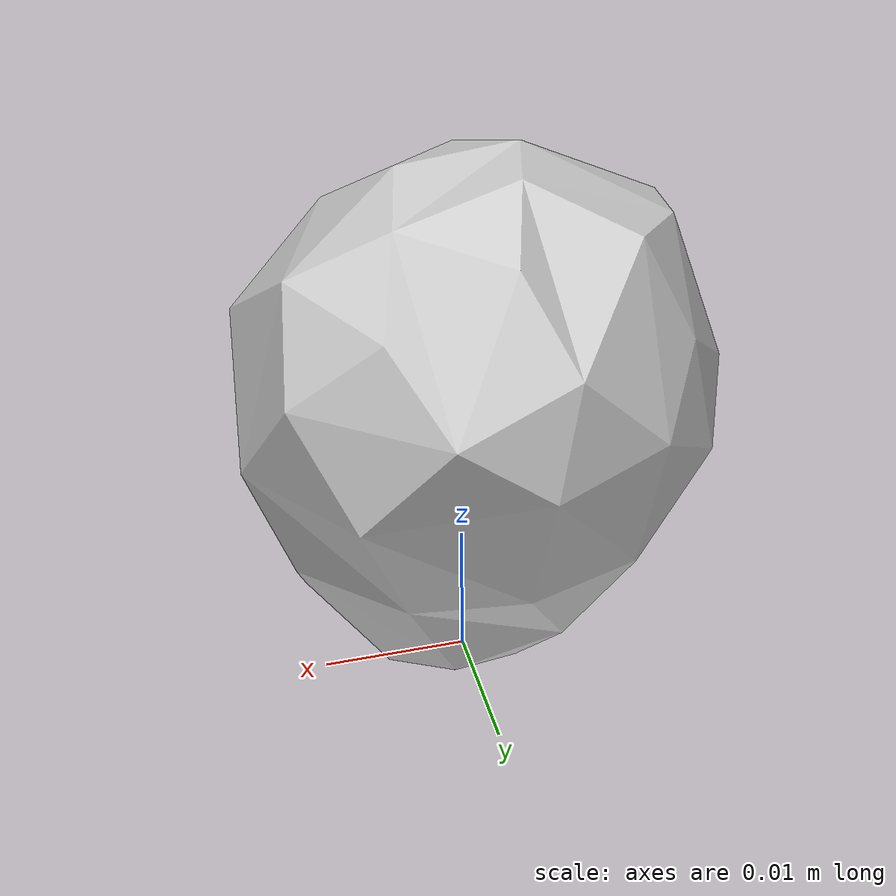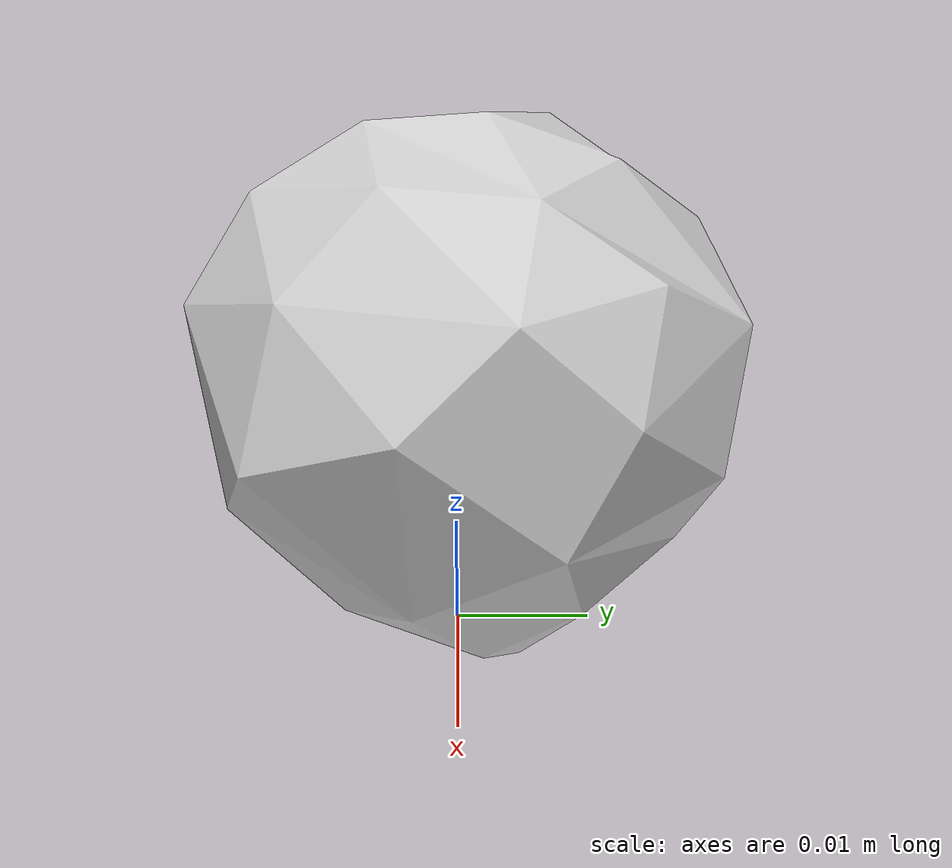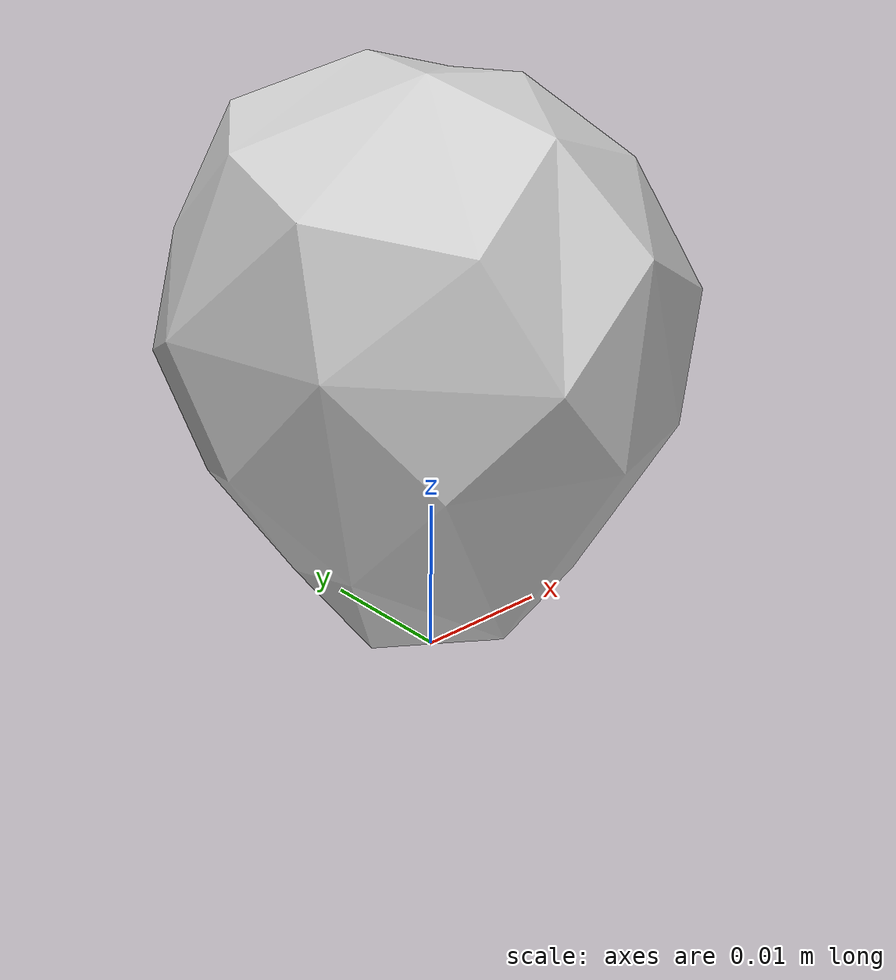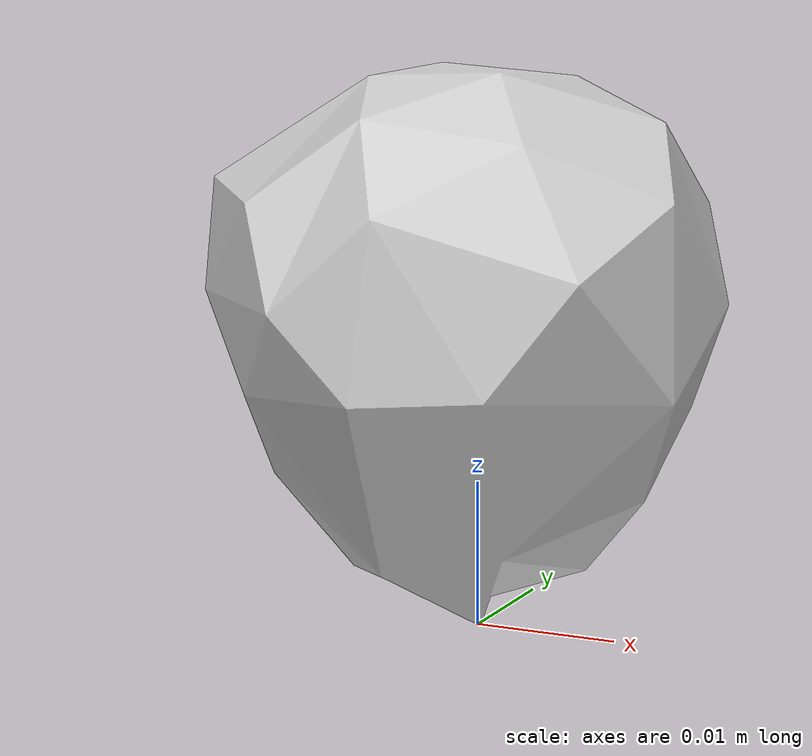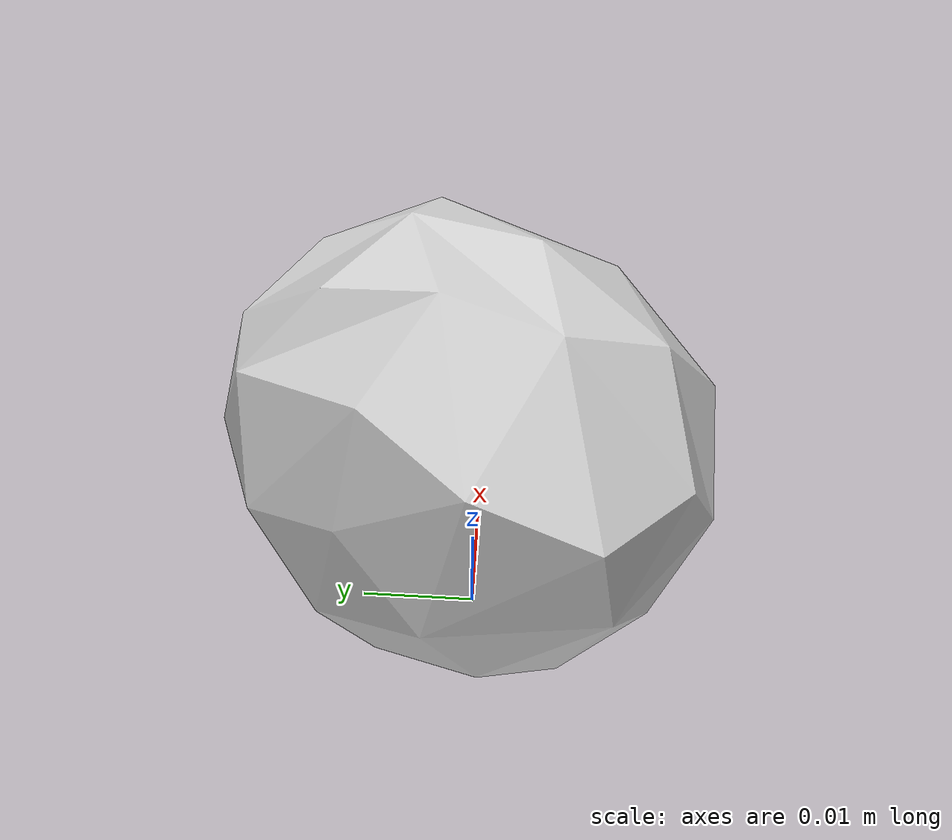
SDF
<?xml version='1.0'?>
<sdf version="1.5">
  <model name="strawberry_07">
    <pose>0 0 0.02 3.14 0 0</pose>
    <static>false</static>
    <link name="link">
      <inertial>
        <mass>0.01</mass>
        <inertia>
          <ixx>0.000001397</ixx>
          <iyy>0.000001397</iyy>
          <izz>0.000000919</izz>
        </inertia>
      </inertial>
      <collision name="collision">
        <geometry>
          <mesh>
            <uri>model://strawberry_07/collision/07.dae</uri>
          </mesh>
        </geometry>
      </collision>
      <visual name="visual">
        <geometry>
          <mesh>
            <uri>model://strawberry_07/visual/07.dae</uri>
          </mesh>
        </geometry>
        <material>
          <script>
            <uri>model://strawberry_07/materials/scripts</uri>
            <uri>model://strawberry_07/materials/textures</uri>
            <name>strawberry_07</name>
          </script>
        </material>
      </visual>
    </link>
  </model>
</sdf>
